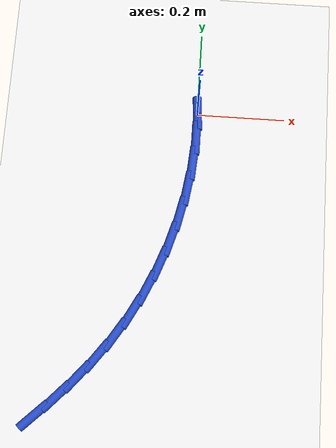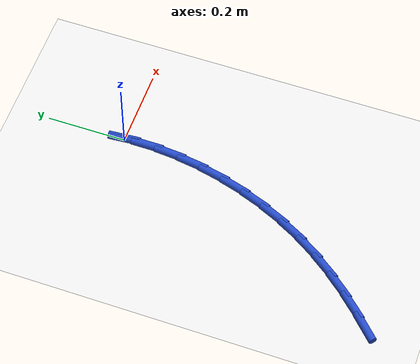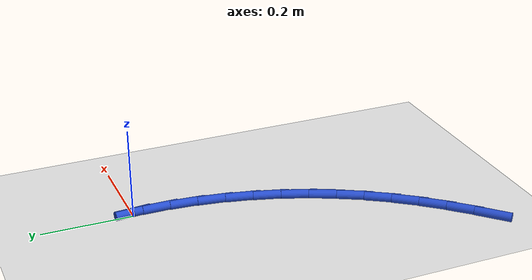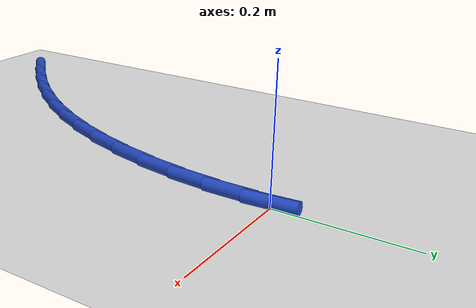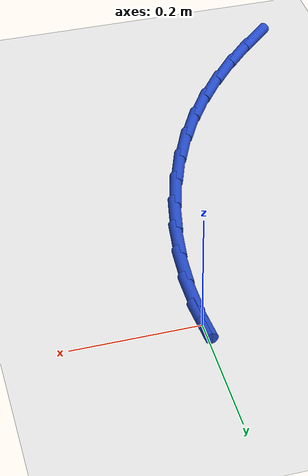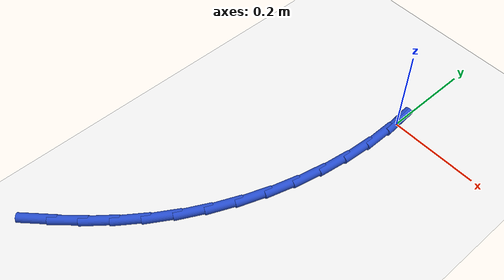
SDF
<sdf version="1.6">
 <world name="default">
  <model name="ground_plane">
   <static>1</static>
   <link name="link">
    <collision name="collision">
     <geometry><plane><normal>0 0 1</normal><size>100 100</size></plane></geometry>
     <surface><friction><ode><mu>100</mu><mu2>50</mu2></ode></friction></surface>
    </collision>
    <visual name="visual">
     <cast_shadows>0</cast_shadows>
     <geometry><plane><normal>0 0 1</normal><size>100 100</size></plane></geometry>
     <material>
      <script><uri>file://media/materials/scripts/gazebo.material</uri><name>Gazebo/WhiteGlow</name></script>
     </material>
    </visual>
   </link>
  </model>
  <model name="line">
   <link name="link_0">
    <pose>-1.0755285551056204e-16 -1.1102230246251565e-16 0.01 0 1.57 -1.49690121197461</pose>
    <collision name="collision">
     <geometry><cylinder><radius>0.01</radius><length>0.08</length></cylinder></geometry>
    </collision>
    <visual name="visual">
     <material>
      <script><name>Gazebo/Blue</name><uri>file://media/materials/scripts/gazebo.material</uri></script>
     </material>
     <geometry><cylinder><radius>0.01</radius><length>0.08</length></cylinder></geometry>
    </visual>
   </link>
   <link name="link_107">
    <pose>-0.3058595460883355 -0.704327101788541 0.01 0 1.57 0.7779594760551042</pose>
    <collision name="collision">
     <geometry><cylinder><radius>0.01</radius><length>0.08</length></cylinder></geometry>
    </collision>
    <visual name="visual">
     <material>
      <script><name>Gazebo/Blue</name><uri>file://media/materials/scripts/gazebo.material</uri></script>
     </material>
     <geometry><cylinder><radius>0.01</radius><length>0.08</length></cylinder></geometry>
    </visual>
   </link>
   <link name="link_108">
    <pose>-0.26268064854209566 -0.6617858613094444 0.01 0 1.57 0.8261990116591466</pose>
    <collision name="collision">
     <geometry><cylinder><radius>0.01</radius><length>0.08</length></cylinder></geometry>
    </collision>
    <visual name="visual">
     <material>
      <script><name>Gazebo/Blue</name><uri>file://media/materials/scripts/gazebo.material</uri></script>
     </material>
     <geometry><cylinder><radius>0.01</radius><length>0.08</length></cylinder></geometry>
    </visual>
   </link>
   <link name="link_109">
    <pose>-0.22172122661989563 -0.617339892071209 0.01 0 1.57 0.8823335748373732</pose>
    <collision name="collision">
     <geometry><cylinder><radius>0.01</radius><length>0.08</length></cylinder></geometry>
    </collision>
    <visual name="visual">
     <material>
      <script><name>Gazebo/Blue</name><uri>file://media/materials/scripts/gazebo.material</uri></script>
     </material>
     <geometry><cylinder><radius>0.01</radius><length>0.08</length></cylinder></geometry>
    </visual>
   </link>
   <link name="link_110">
    <pose>-0.18337495774507961 -0.5707327375212973 0.01 0 1.57 0.9462148552232647</pose>
    <collision name="collision">
     <geometry><cylinder><radius>0.01</radius><length>0.08</length></cylinder></geometry>
    </collision>
    <visual name="visual">
     <material>
      <script><name>Gazebo/Blue</name><uri>file://media/materials/scripts/gazebo.material</uri></script>
     </material>
     <geometry><cylinder><radius>0.01</radius><length>0.08</length></cylinder></geometry>
    </visual>
   </link>
   <link name="link_111">
    <pose>-0.14803551934099238 -0.5217079411071719 0.01 0 1.57 1.0170907376654688</pose>
    <collision name="collision">
     <geometry><cylinder><radius>0.01</radius><length>0.08</length></cylinder></geometry>
    </collision>
    <visual name="visual">
     <material>
      <script><name>Gazebo/Blue</name><uri>file://media/materials/scripts/gazebo.material</uri></script>
     </material>
     <geometry><cylinder><radius>0.01</radius><length>0.08</length></cylinder></geometry>
    </visual>
   </link>
   <link name="link_112">
    <pose>-0.116087536459112 -0.4700301844688279 0.01 0 1.57 1.0893712977451662</pose>
    <collision name="collision">
     <geometry><cylinder><radius>0.01</radius><length>0.08</length></cylinder></geometry>
    </collision>
    <visual name="visual">
     <material>
      <script><name>Gazebo/Blue</name><uri>file://media/materials/scripts/gazebo.material</uri></script>
     </material>
     <geometry><cylinder><radius>0.01</radius><length>0.08</length></cylinder></geometry>
    </visual>
   </link>
   <link name="link_113">
    <pose>-0.08776487394858765 -0.41581618937785414 0.01 0 1.57 1.159312178602659</pose>
    <collision name="collision">
     <geometry><cylinder><radius>0.01</radius><length>0.08</length></cylinder></geometry>
    </collision>
    <visual name="visual">
     <material>
      <script><name>Gazebo/Blue</name><uri>file://media/materials/scripts/gazebo.material</uri></script>
     </material>
     <geometry><cylinder><radius>0.01</radius><length>0.08</length></cylinder></geometry>
    </visual>
   </link>
   <link name="link_114">
    <pose>-0.06317697596976667 -0.3594732123423337 0.01 0 1.57 1.2275719103882854</pose>
    <collision name="collision">
     <geometry><cylinder><radius>0.01</radius><length>0.08</length></cylinder></geometry>
    </collision>
    <visual name="visual">
     <material>
      <script><name>Gazebo/Blue</name><uri>file://media/materials/scripts/gazebo.material</uri></script>
     </material>
     <geometry><cylinder><radius>0.01</radius><length>0.08</length></cylinder></geometry>
    </visual>
   </link>
   <link name="link_115">
    <pose>-0.042429563178673614 -0.30141720462487787 0.01 0 1.57 1.2949410831812511</pose>
    <collision name="collision">
     <geometry><cylinder><radius>0.01</radius><length>0.08</length></cylinder></geometry>
    </collision>
    <visual name="visual">
     <material>
      <script><name>Gazebo/Blue</name><uri>file://media/materials/scripts/gazebo.material</uri></script>
     </material>
     <geometry><cylinder><radius>0.01</radius><length>0.08</length></cylinder></geometry>
    </visual>
   </link>
   <link name="link_116">
    <pose>-0.025628356231333815 -0.24206411748810006 0.01 0 1.57 1.3622130872281513</pose>
    <collision name="collision">
     <geometry><cylinder><radius>0.01</radius><length>0.08</length></cylinder></geometry>
    </collision>
    <visual name="visual">
     <material>
      <script><name>Gazebo/Blue</name><uri>file://media/materials/scripts/gazebo.material</uri></script>
     </material>
     <geometry><cylinder><radius>0.01</radius><length>0.08</length></cylinder></geometry>
    </visual>
   </link>
   <link name="link_117">
    <pose>-0.012879075783771787 -0.18182990219461154 0.01 0 1.57 1.430186411943077</pose>
    <collision name="collision">
     <geometry><cylinder><radius>0.01</radius><length>0.08</length></cylinder></geometry>
    </collision>
    <visual name="visual">
     <material>
      <script><name>Gazebo/Blue</name><uri>file://media/materials/scripts/gazebo.material</uri></script>
     </material>
     <geometry><cylinder><radius>0.01</radius><length>0.08</length></cylinder></geometry>
    </visual>
   </link>
   <link name="link_118">
    <pose>-0.0042874424920122875 -0.12113051000702416 0.01 0 1.57 1.499667733679894</pose>
    <collision name="collision">
     <geometry><cylinder><radius>0.01</radius><length>0.08</length></cylinder></geometry>
    </collision>
    <visual name="visual">
     <material>
      <script><name>Gazebo/Blue</name><uri>file://media/materials/scripts/gazebo.material</uri></script>
     </material>
     <geometry><cylinder><radius>0.01</radius><length>0.08</length></cylinder></geometry>
    </visual>
   </link>
   <link name="link_119">
    <pose>4.082298791990846e-05 -0.06038189218794924 0.01 0 1.57 -1.5701202469268938</pose>
    <collision name="collision">
     <geometry><cylinder><radius>0.01</radius><length>0.08</length></cylinder></geometry>
    </collision>
    <visual name="visual">
     <material>
      <script><name>Gazebo/Blue</name><uri>file://media/materials/scripts/gazebo.material</uri></script>
     </material>
     <geometry><cylinder><radius>0.01</radius><length>0.08</length></cylinder></geometry>
    </visual>
   </link>
   <link name="link_120">
    <pose>-1.214306433183765e-16 -2.3592239273284576e-16 0.01 0 1.57 -1.4951741740107964</pose>
    <collision name="collision">
     <geometry><cylinder><radius>0.01</radius><length>0.08</length></cylinder></geometry>
    </collision>
    <visual name="visual">
     <material>
      <script><name>Gazebo/Blue</name><uri>file://media/materials/scripts/gazebo.material</uri></script>
     </material>
     <geometry><cylinder><radius>0.01</radius><length>0.08</length></cylinder></geometry>
    </visual>
   </link>
  </model>
 </world>
</sdf>
